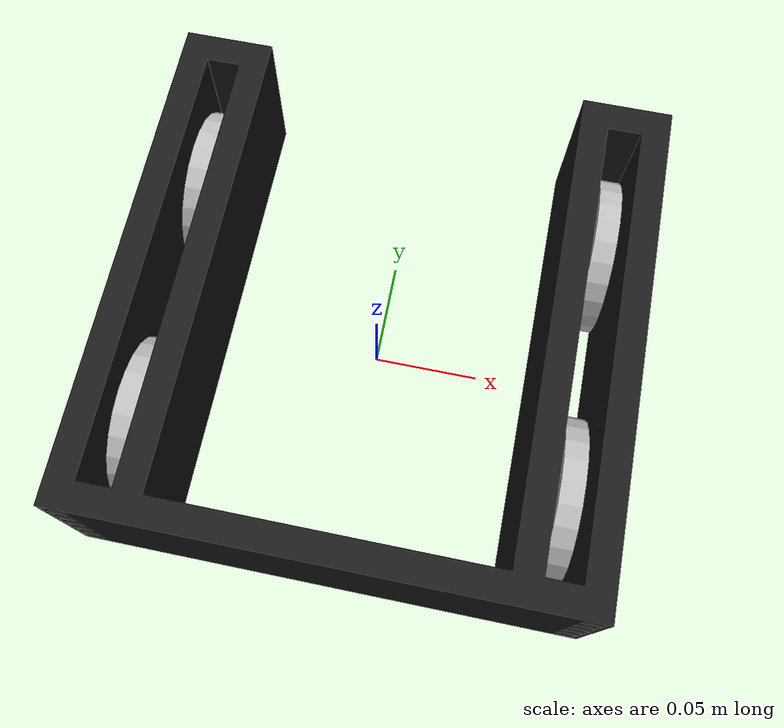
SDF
<?xml version='1.0'?>
<sdf version='1.6'>
  <model name='bot'>
    <pose frame=''>0 0 0.013692188 0 -0 0</pose>
    <static>0</static>
    <link name='chassis'>
      <gravity>1</gravity>
      <inertial>
        <mass>12.773403</mass>
        <inertia> <!-- inertias are tricky to compute -->
          <!-- http://gazebosim.org/tutorials?tut=inertia&cat=build_robot -->
          <ixx>7.668621</ixx>
          <ixy>0.0</ixy>
          <ixz>0.0</ixz>
          <iyy>10.958139</iyy>
          <iyz>0.0</iyz>
          <izz>17.371395</izz>
        </inertia>
        <pose>0 -0.0141659 0.0317501</pose>
      </inertial>
      <collision name='collision'>
        <geometry>
          <mesh>
            <uri>model://badbot/meshes/chassisCollision.stl</uri>
          </mesh>
        </geometry>
      </collision>
      <visual name='visual'>
        <geometry>
          <mesh>
            <uri>model://badbot/meshes/chassis.stl</uri>
          </mesh>
        </geometry>
        <material>
          <ambient>0.75 0.75 0.75 1</ambient>
          <diffuse>0.1 0.1 0.1 1</diffuse>
          <specular>0 0 0 0</specular>
          <emissive>0 0 0 0</emissive>
        </material>
      </visual>
      <sensor name="laserFront" type="ray">
        <pose>0 0 0 0 0 0</pose>
        <ray>
          <scan>

          </scan>
        </ray>
      </sensor>
    </link>

    <link name='ghost'>
      <gravity>0</gravity>
      <visual name='visual'>
        <geometry>
          <mesh>
            <uri>model://badbot/meshes/chassis.stl</uri>
          </mesh>
        </geometry>
        <material>
          <ambient>0.75 0.75 0.75 0.3</ambient>
          <diffuse>0.1 0.1 0.1 0.3</diffuse>
          <specular>0 0 0 0</specular>
          <emissive>0 0 0 0</emissive>
        </material>
      </visual>
    </link>

    <link name="left_front_wheel">
      <pose>-0.09398 0.0600075 0.022820312 0 1.57079632679 0</pose>
      <gravity>1</gravity>
      <inertial>
        <mass>0.063819</mass>
        <inertia> <!-- inertias are tricky to compute -->
          <!-- http://gazebosim.org/tutorials?tut=inertia&cat=build_robot -->
          <ixx>0.004254</ixx>
          <ixy>0.0</ixy>
          <ixz>0.0</ixz>
          <iyy>0.002181</iyy>
          <iyz>0.0</iyz>
          <izz>0.002181</izz>
        </inertia>
      </inertial>
      <collision name="collision">
        <geometry>
          <cylinder>
            <radius>0.0365125</radius>
            <length>0.01016</length>
          </cylinder>
        </geometry>
        <surface>
          <friction>
            <torsional>
              <coefficient>0.5</coefficient>
              <patch_radius>0.01</patch_radius>
              <ode>
                <slip>0.2</slip>

              </ode>
            </torsional>
            <ode>
              <mu>0.998000</mu>
              <mu2>0.998000</mu2>
              <fdir1>0.000000 0.000000 0.000000</fdir1>
              <slip1>0.02000</slip1>
              <slip2>0.020000</slip2>
            </ode>
          </friction>
          <bounce>
            <restitution_coefficient>0.000000</restitution_coefficient>
            <threshold>100000.000000</threshold>
          </bounce>
          <contact>
            <ode>
              <soft_cfm>0.000000</soft_cfm>
              <soft_erp>0.200000</soft_erp>
              <kp>100000.000000</kp>
              <kd>1.000000</kd>
              <max_vel>100.000000</max_vel>
              <min_depth>0.001000</min_depth>
            </ode>
          </contact>
        </surface>
      </collision>
      <visual name="visual">
        <geometry>
          <cylinder>
            <radius>0.0365125</radius>
            <length>0.01016</length>
          </cylinder>
        </geometry>
      </visual>
    </link>
    <link name="right_front_wheel">
      <pose>0.09398 0.0600075 0.022820312 0 1.57079632679 0</pose>
      <gravity>1</gravity>
      <inertial>
        <mass>0.063819</mass>
        <inertia> <!-- inertias are tricky to compute -->
          <!-- http://gazebosim.org/tutorials?tut=inertia&cat=build_robot -->
          <ixx>0.004254</ixx>
          <ixy>0.0</ixy>
          <ixz>0.0</ixz>
          <iyy>0.002181</iyy>
          <iyz>0.0</iyz>
          <izz>0.002181</izz>
        </inertia>
      </inertial>
      <collision name="collision">
        <geometry>
          <cylinder>
            <radius>0.0365125</radius>
            <length>0.01016</length>
          </cylinder>
        </geometry>
        <surface>
          <friction>
            <torsional>
              <coefficient>0.5</coefficient>
              <patch_radius>0.01</patch_radius>
              <ode>
                <slip>0.2</slip>

              </ode>
            </torsional>
            <ode>
              <mu>0.998000</mu>
              <mu2>0.998000</mu2>
              <fdir1>0.000000 0.000000 0.000000</fdir1>
              <slip1>0.02000</slip1>
              <slip2>0.020000</slip2>
            </ode>
          </friction>
          <bounce>
            <restitution_coefficient>0.000000</restitution_coefficient>
            <threshold>100000.000000</threshold>
          </bounce>
          <contact>
            <ode>
              <soft_cfm>0.000000</soft_cfm>
              <soft_erp>0.200000</soft_erp>
              <kp>100000.000000</kp>
              <kd>1.000000</kd>
              <max_vel>100.000000</max_vel>
              <min_depth>0.001000</min_depth>
            </ode>
          </contact>
        </surface>
      </collision>
      <visual name="visual">
        <geometry>
          <cylinder>
            <radius>0.0365125</radius>
            <length>0.01016</length>
          </cylinder>
        </geometry>
      </visual>
    </link>
    <link name="left_back_wheel">
      <pose>-0.09398 -0.0600075 0.022820312 0 1.57079632679 0</pose>
      <gravity>1</gravity>
      <inertial>
        <mass>0.063819</mass>
        <inertia> <!-- inertias are tricky to compute -->
          <!-- http://gazebosim.org/tutorials?tut=inertia&cat=build_robot -->
          <ixx>0.004254</ixx>
          <ixy>0.0</ixy>
          <ixz>0.0</ixz>
          <iyy>0.002181</iyy>
          <iyz>0.0</iyz>
          <izz>0.002181</izz>
        </inertia>
      </inertial>
      <collision name="collision">
        <geometry>
          <cylinder>
            <radius>0.0365125</radius>
            <length>0.01016</length>
          </cylinder>
        </geometry>
        <surface>
          <friction>
            <torsional>
              <coefficient>0.5</coefficient>
              <patch_radius>0.01</patch_radius>
              <ode>
                <slip>0.2</slip>

              </ode>
            </torsional>
            <ode>
              <mu>0.998000</mu>
              <mu2>0.998000</mu2>
              <fdir1>0.000000 0.000000 0.000000</fdir1>
              <slip1>0.02000</slip1>
              <slip2>0.020000</slip2>
            </ode>
          </friction>
          <bounce>
            <restitution_coefficient>0.000000</restitution_coefficient>
            <threshold>100000.000000</threshold>
          </bounce>
          <contact>
            <ode>
              <soft_cfm>0.000000</soft_cfm>
              <soft_erp>0.200000</soft_erp>
              <kp>100000.000000</kp>
              <kd>1.000000</kd>
              <max_vel>100.000000</max_vel>
              <min_depth>0.001000</min_depth>
            </ode>
          </contact>
        </surface>
      </collision>
      <visual name="visual">
        <geometry>
          <cylinder>
            <radius>0.0365125</radius>
            <length>0.01016</length>
          </cylinder>
        </geometry>
      </visual>
    </link>
    <link name="right_back_wheel">
      <pose>0.09398 -0.0600075 0.022820312 0 1.57079632679 0</pose>
      <gravity>1</gravity>
      <inertial>
        <mass>0.063819</mass>
        <inertia> <!-- inertias are tricky to compute -->
          <!-- http://gazebosim.org/tutorials?tut=inertia&cat=build_robot -->
          <ixx>0.004254</ixx>
          <ixy>0.0</ixy>
          <ixz>0.0</ixz>
          <iyy>0.002181</iyy>
          <iyz>0.0</iyz>
          <izz>0.002181</izz>
        </inertia>
      </inertial>
      <collision name="collision">
        <geometry>
          <cylinder>
            <radius>0.0365125</radius>
            <length>0.01016</length>
          </cylinder>
        </geometry>
        <surface>
          <friction>
            <torsional>
              <coefficient>0.5</coefficient>
              <patch_radius>0.01</patch_radius>
              <ode>
                <slip>0.2</slip>

              </ode>
            </torsional>
            <ode>
              <mu>0.998000</mu>
              <mu2>0.998000</mu2>
              <fdir1>0.000000 0.000000 0.000000</fdir1>
              <slip1>0.02000</slip1>
              <slip2>0.020000</slip2>
            </ode>
          </friction>
          <bounce>
            <restitution_coefficient>0.000000</restitution_coefficient>
            <threshold>100000.000000</threshold>
          </bounce>
          <contact>
            <ode>
              <soft_cfm>0.000000</soft_cfm>
              <soft_erp>0.200000</soft_erp>
              <kp>100000.000000</kp>
              <kd>1.000000</kd>
              <max_vel>100.000000</max_vel>
              <min_depth>0.001000</min_depth>
            </ode>
          </contact>
        </surface>
      </collision>
      <visual name="visual">
        <geometry>
          <cylinder>
            <radius>0.0365125</radius>
            <length>0.01016</length>
          </cylinder>
        </geometry>
      </visual>
    </link>
    <joint type="revolute" name="left_front">
      <pose>0 0 0 0 0 0</pose>
      <child>left_front_wheel</child>
      <parent>chassis</parent>
      <physics>
        <provide_feedback>
          1
        </provide_feedback>
      </physics>
      <axis>
        <xyz>0 0 1</xyz>
        <limit>
          <velocity>65.346888889</velocity>
        </limit>
        <dynamics>
          <damping>0.1</damping>
          <friction>0.7</friction>
        </dynamics>
      </axis>
    </joint>
    <joint type="revolute" name="right_front">
      <pose>0 0 0 0 0 0</pose>
      <child>right_front_wheel</child>
      <parent>chassis</parent>
      <physics>
        <provide_feedback>
          1
        </provide_feedback>
      </physics>
      <axis>
        <xyz>0 0 1</xyz>
        <limit>
          <velocity>65.346888889</velocity>
        </limit>
        <dynamics>
          <damping>0.1</damping>
          <friction>0.7</friction>
        </dynamics>
      </axis>
    </joint>
    <joint type="revolute" name="left_rear">
      <pose>0 0 0 0 0 0</pose>
      <child>left_back_wheel</child>
      <parent>chassis</parent>
      <physics>
        <provide_feedback>
          1
        </provide_feedback>
      </physics>
      <axis>
        <xyz>0 0 1</xyz>
        <limit>
          <velocity>65.346888889</velocity>
        </limit>
        <dynamics>
          <damping>0.1</damping>
          <friction>0.7</friction>
        </dynamics>
      </axis>
    </joint>
    <joint type="revolute" name="right_rear">
      <pose>0 0 0 0 0 0</pose>
      <child>right_back_wheel</child>
      <parent>chassis</parent>
      <physics>
        <provide_feedback>
          1
        </provide_feedback>
      </physics>
      <axis>
        <xyz>0 0 1</xyz>
        <limit>
          <velocity>65.346888889</velocity>
        </limit>
        <dynamics>
          <damping>0.1</damping>
          <friction>0.7</friction>
        </dynamics>
      </axis>
    </joint>
    <plugin name='skidSteer' filename='libskidSteer.so'>
      <skidsteer_motor_max_torque>8.52</skidsteer_motor_max_torque>
      <skidsteer_motor_max_speed>1560.833333333</skidsteer_motor_max_speed>
      <skidsteer_equilibrium_max>1.5</skidsteer_equilibrium_max>
    </plugin>
  </model>
</sdf>
